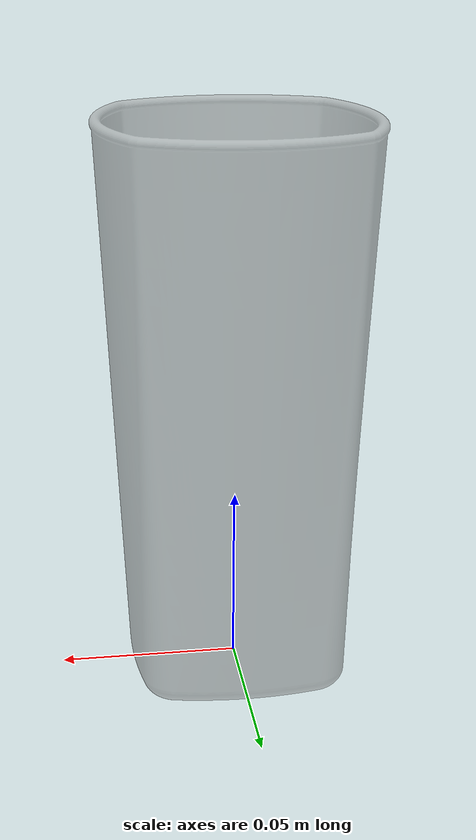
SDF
<?xml version ="1.0"?>
<sdf version="1.6">
  <model name="water_glass">

    <link name="link">

      <inertial>
        <pose>0 0 0 0 0 0</pose>
        <mass>0.8</mass>
      </inertial>

      <collision name="colision1">
        <pose>0 0 0 0 0 0 </pose>
        <geometry>

          <mesh>
            <uri>model://water_glass/meshes/glass.dae</uri>

          </mesh>
        </geometry>

      </collision>

      <visual name="visual1">
        <cast_shadows>false</cast_shadows>
	<pose> 0 0 0 0 0 0</pose>
        <geometry>
          <mesh>
            <uri>model://water_glass/meshes/glass.dae</uri>

          </mesh>
        </geometry>
	<material>
	  <script>
	    <name>Gazebo/GreyTransparent</name>
	    <uri>file://media/materials/scripts/gazebo.material</uri>
	  </script>
	</material>
      </visual>

    </link>
  </model>
</sdf>
